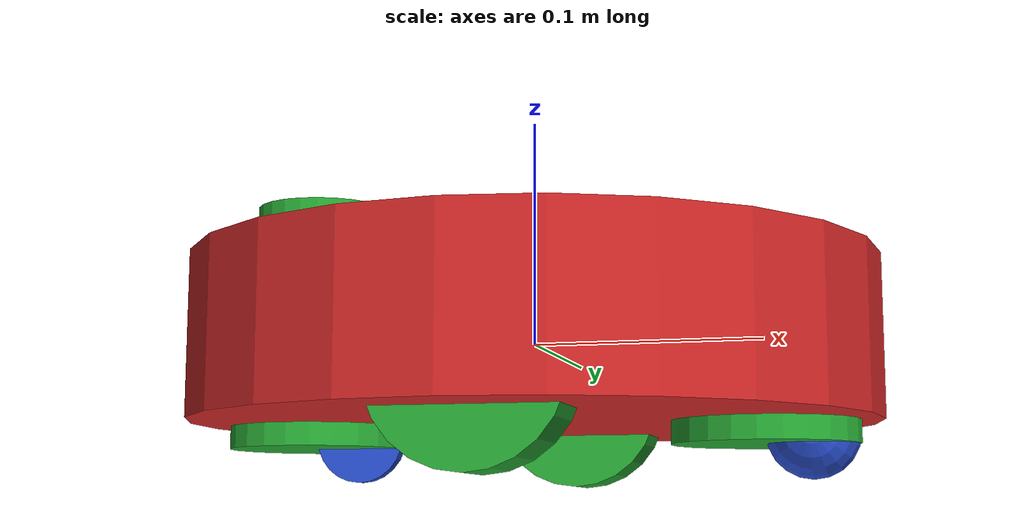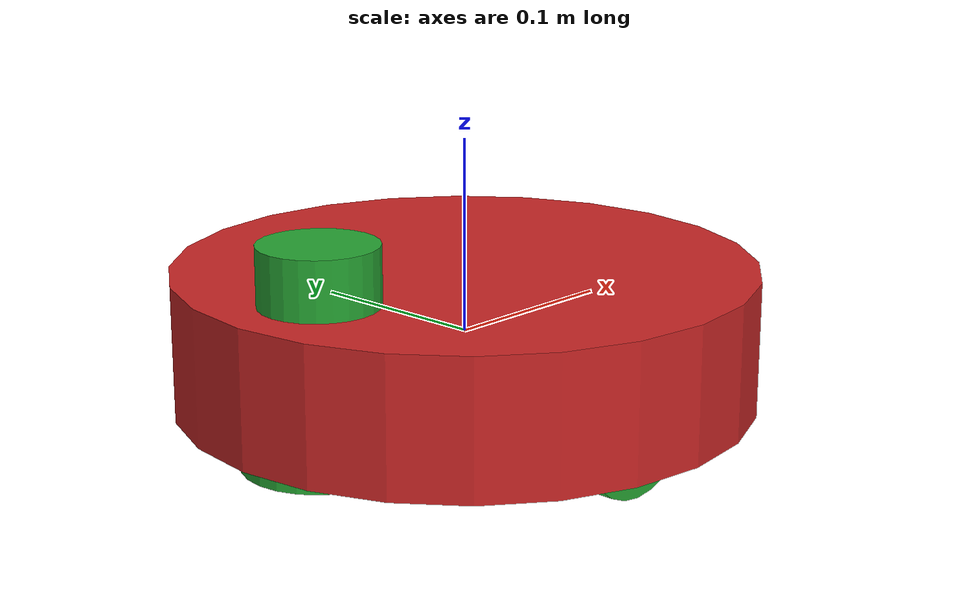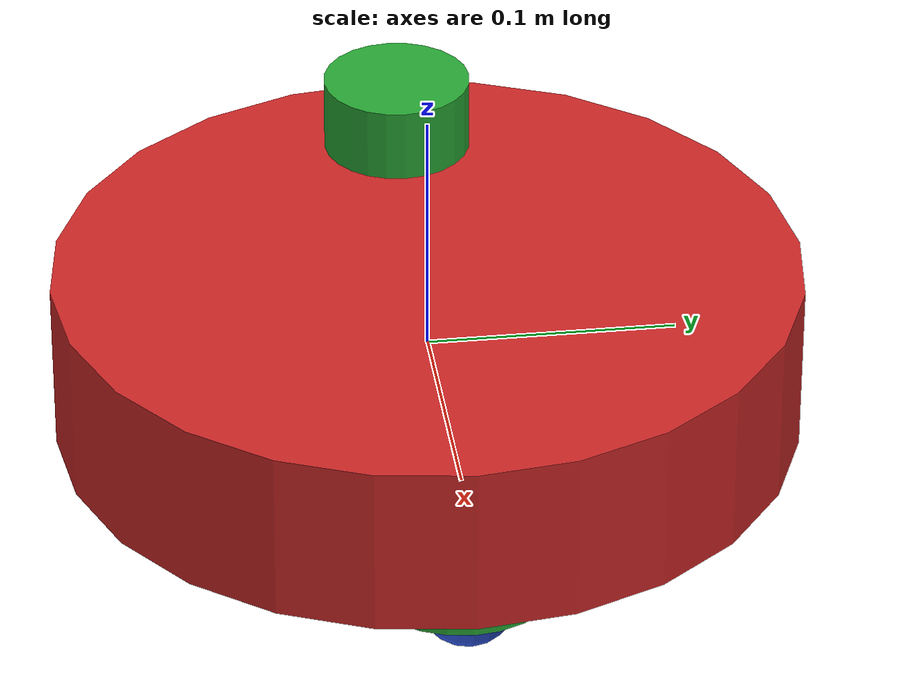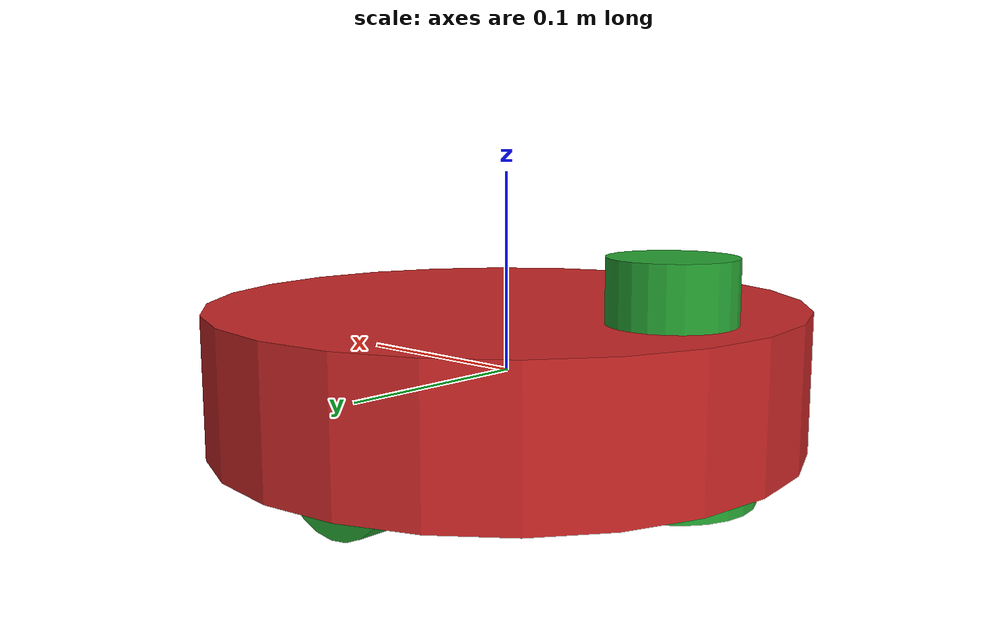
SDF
<sdf version='1.7'>
  <model name='differential'>
    <link name='body_link'>
      <inertial>
        <pose>-0.001961 0 0.00098 0 -0 0</pose>
        <mass>5.1</mass>
        <inertia>
          <ixx>0.101245</ixx>
          <ixy>0</ixy>
          <ixz>0.000490196</ixz>
          <iyy>0.102225</iyy>
          <iyz>0</iyz>
          <izz>0.10198</izz>
        </inertia>
      </inertial>
      <collision name='body_link_fixed_joint_lump__body_collision_collision'>
        <pose>0 0 0 0 -0 0</pose>
        <geometry>
          <cylinder>
            <length>0.08</length>
            <radius>0.16</radius>
          </cylinder>
        </geometry>
      </collision>
      <collision name='body_link_fixed_joint_lump__lidar_link_collision_1'>
        <pose>-0.1 0 0.05 0 -0 0</pose>
        <geometry>
          <cylinder>
            <length>0.03</length>
            <radius>0.03</radius>
          </cylinder>
        </geometry>
        <surface>
          <contact>
            <ode/>
          </contact>
          <friction>
            <ode/>
          </friction>
        </surface>
      </collision>
      <visual name='body_link_visual'>
        <pose>0 0 0 0 -0 0</pose>
        <geometry>
          <cylinder>
            <length>0.07</length>
            <radius>0.15</radius>
          </cylinder>
        </geometry>
        <material>
          <script>
            <name>Gazebo/Red</name>
            <uri>file://media/materials/scripts/gazebo.material</uri>
          </script>
        </material>
      </visual>
      <visual name='body_link_fixed_joint_lump__lidar_link_visual_1'>
        <pose>-0.1 0 0.05 0 -0 0</pose>
        <geometry>
          <cylinder>
            <length>0.03</length>
            <radius>0.03</radius>
          </cylinder>
        </geometry>
        <material>
          <script>
            <name>Gazebo/Green</name>
            <uri>file://media/materials/scripts/gazebo.material</uri>
          </script>
        </material>
      </visual>
      <self_collide>0</self_collide>
      <sensor name='base_contact_sensor' type='contact'>
        <always_on>1</always_on>
        <update_rate>100</update_rate>
        <contact>
          <collision>body_link_fixed_joint_lump__body_collision_collision</collision>
          <topic>__default_topic__</topic>
        </contact>
        <plugin name='base_gazebo_ros_bumper_controller' filename='libgazebo_ros_bumper.so'>
          <alwaysOn>1</alwaysOn>
          <updateRate>100.0</updateRate>
        </plugin>
      </sensor>
      <sensor name='lidar_sensor' type='ray'>
        <visualize>1</visualize>
        <update_rate>40</update_rate>
        <ray>
          <scan>
            <horizontal>
              <samples>180</samples>
              <resolution>1</resolution>
              <min_angle>-1.5708</min_angle>
              <max_angle>1.5708</max_angle>
            </horizontal>
            <vertical>
              <samples>16</samples>
              <resolution>1</resolution>
              <min_angle>-0.2618</min_angle>
              <max_angle>0.2618</max_angle>
            </vertical>
          </scan>
          <range>
            <min>0.14</min>
            <max>10</max>
            <resolution>0.01</resolution>
          </range>
        </ray>
        <plugin name='gazebo_ros_lidar_controller' filename='libgazebo_ros_ray_sensor.so'>
          <ros/>
          <frame_name>lidar_link</frame_name>
        </plugin>
        <pose>-0.1 0 0.05 0 -0 -3.14159</pose>
      </sensor>
    </link>
    <joint name='freeF_joint' type='revolute'>
      <pose relative_to='body_link'>-0.1 0 -0.04 0 -0 0</pose>
      <parent>body_link</parent>
      <child>flangeF_link</child>
      <axis>
        <xyz>0 0 1</xyz>
        <limit>
          <lower>-1e+16</lower>
          <upper>1e+16</upper>
        </limit>
        <dynamics>
          <spring_reference>0</spring_reference>
          <spring_stiffness>0</spring_stiffness>
        </dynamics>
      </axis>
    </joint>
    <link name='flangeF_link'>
      <pose relative_to='freeF_joint'>0 0 0 0 -0 0</pose>
      <inertial>
        <pose>0 0 0 0 -0 0</pose>
        <mass>0.05</mass>
        <inertia>
          <ixx>0.001</ixx>
          <ixy>0</ixy>
          <ixz>0</ixz>
          <iyy>0.001</iyy>
          <iyz>0</iyz>
          <izz>0.001</izz>
        </inertia>
      </inertial>
      <collision name='flangeF_link_collision'>
        <pose>0 0 0 0 -0 0</pose>
        <geometry>
          <cylinder>
            <length>0.01</length>
            <radius>0.04</radius>
          </cylinder>
        </geometry>
        <surface>
          <contact>
            <ode/>
          </contact>
          <friction>
            <ode/>
          </friction>
        </surface>
      </collision>
      <visual name='flangeF_link_visual'>
        <pose>0 0 0 0 -0 0</pose>
        <geometry>
          <cylinder>
            <length>0.01</length>
            <radius>0.04</radius>
          </cylinder>
        </geometry>
        <material>
          <script>
            <name>Gazebo/Green</name>
            <uri>file://media/materials/scripts/gazebo.material</uri>
          </script>
        </material>
      </visual>
    </link>
    <joint name='casterF_joint' type='revolute'>
      <pose relative_to='flangeF_link'>0.02 0 0 0 -0 0</pose>
      <parent>flangeF_link</parent>
      <child>casterF_link</child>
      <axis>
        <xyz>0 1 0</xyz>
        <limit>
          <lower>-1e+16</lower>
          <upper>1e+16</upper>
        </limit>
        <dynamics>
          <spring_reference>0</spring_reference>
          <spring_stiffness>0</spring_stiffness>
        </dynamics>
      </axis>
    </joint>
    <link name='casterF_link'>
      <pose relative_to='casterF_joint'>0 0 0 0 -0 0</pose>
      <inertial>
        <pose>0 0 0 0 -0 0</pose>
        <mass>0.01</mass>
        <inertia>
          <ixx>0.001</ixx>
          <ixy>0</ixy>
          <ixz>0</ixz>
          <iyy>0.001</iyy>
          <iyz>0</iyz>
          <izz>0.001</izz>
        </inertia>
      </inertial>
      <collision name='casterF_link_collision'>
        <pose>0 0 0 1.5708 -0 0</pose>
        <geometry>
          <cylinder>
            <length>0.006</length>
            <radius>0.02</radius>
          </cylinder>
        </geometry>
        <surface>
          <contact>
            <ode/>
          </contact>
          <friction>
            <ode/>
          </friction>
        </surface>
      </collision>
      <visual name='casterF_link_visual'>
        <pose>0 0 0 1.5708 -0 0</pose>
        <geometry>
          <cylinder>
            <length>0.006</length>
            <radius>0.02</radius>
          </cylinder>
        </geometry>
        <material>
          <script>
            <name>Gazebo/Blue</name>
            <uri>file://media/materials/scripts/gazebo.material</uri>
          </script>
        </material>
      </visual>
    </link>
    <joint name='freeR_joint' type='revolute'>
      <pose relative_to='body_link'>0.1 0 -0.04 0 -0 0</pose>
      <parent>body_link</parent>
      <child>flangeR_link</child>
      <axis>
        <xyz>0 0 1</xyz>
        <limit>
          <lower>-1e+16</lower>
          <upper>1e+16</upper>
        </limit>
        <dynamics>
          <spring_reference>0</spring_reference>
          <spring_stiffness>0</spring_stiffness>
        </dynamics>
      </axis>
    </joint>
    <link name='flangeR_link'>
      <pose relative_to='freeR_joint'>0 0 0 0 -0 0</pose>
      <inertial>
        <pose>0 0 0 0 -0 0</pose>
        <mass>0.05</mass>
        <inertia>
          <ixx>0.001</ixx>
          <ixy>0</ixy>
          <ixz>0</ixz>
          <iyy>0.001</iyy>
          <iyz>0</iyz>
          <izz>0.001</izz>
        </inertia>
      </inertial>
      <collision name='flangeR_link_collision'>
        <pose>0 0 0 0 -0 0</pose>
        <geometry>
          <cylinder>
            <length>0.01</length>
            <radius>0.04</radius>
          </cylinder>
        </geometry>
        <surface>
          <contact>
            <ode/>
          </contact>
          <friction>
            <ode/>
          </friction>
        </surface>
      </collision>
      <visual name='flangeR_link_visual'>
        <pose>0 0 0 0 -0 0</pose>
        <geometry>
          <cylinder>
            <length>0.01</length>
            <radius>0.04</radius>
          </cylinder>
        </geometry>
        <material>
          <script>
            <name>Gazebo/Green</name>
            <uri>file://media/materials/scripts/gazebo.material</uri>
          </script>
        </material>
      </visual>
    </link>
    <joint name='casterR_joint' type='revolute'>
      <pose relative_to='flangeR_link'>0.02 0 0 0 -0 0</pose>
      <parent>flangeR_link</parent>
      <child>casterR_link</child>
      <axis>
        <xyz>0 1 0</xyz>
        <limit>
          <lower>-1e+16</lower>
          <upper>1e+16</upper>
        </limit>
        <dynamics>
          <spring_reference>0</spring_reference>
          <spring_stiffness>0</spring_stiffness>
        </dynamics>
      </axis>
    </joint>
    <link name='casterR_link'>
      <pose relative_to='casterR_joint'>0 0 0 0 -0 0</pose>
      <inertial>
        <pose>0 0 0 0 -0 0</pose>
        <mass>0.01</mass>
        <inertia>
          <ixx>0.001</ixx>
          <ixy>0</ixy>
          <ixz>0</ixz>
          <iyy>0.001</iyy>
          <iyz>0</iyz>
          <izz>0.001</izz>
        </inertia>
      </inertial>
      <collision name='casterR_link_collision'>
        <pose>0 0 0 1.5708 -0 0</pose>
        <geometry>
          <sphere>
            <radius>0.02</radius>
          </sphere>
        </geometry>
        <surface>
          <contact>
            <ode/>
          </contact>
          <friction>
            <ode/>
          </friction>
        </surface>
      </collision>
      <visual name='casterR_link_visual'>
        <pose>0 0 0 1.5708 -0 0</pose>
        <geometry>
          <sphere>
            <radius>0.02</radius>
          </sphere>
        </geometry>
        <material>
          <script>
            <name>Gazebo/Blue</name>
            <uri>file://media/materials/scripts/gazebo.material</uri>
          </script>
        </material>
      </visual>
    </link>
    <joint name='wheelL_joint' type='revolute'>
      <pose relative_to='body_link'>0 -0.1 -0.02 1.5708 -0 0</pose>
      <parent>body_link</parent>
      <child>wheelL_link</child>
      <axis>
        <xyz>0 0 1</xyz>
        <limit>
          <lower>-1e+16</lower>
          <upper>1e+16</upper>
        </limit>
        <dynamics>
          <spring_reference>0</spring_reference>
          <spring_stiffness>0</spring_stiffness>
        </dynamics>
      </axis>
    </joint>
    <link name='wheelL_link'>
      <pose relative_to='wheelL_joint'>0 0 0 0 -0 0</pose>
      <inertial>
        <pose>0 0 0 0 -0 0</pose>
        <mass>0.1</mass>
        <inertia>
          <ixx>0.01</ixx>
          <ixy>0</ixy>
          <ixz>0</ixz>
          <iyy>0.01</iyy>
          <iyz>0</iyz>
          <izz>0.01</izz>
        </inertia>
      </inertial>
      <collision name='wheelL_link_collision'>
        <pose>0 0 0 0 -0 0</pose>
        <geometry>
          <cylinder>
            <length>0.03</length>
            <radius>0.04</radius>
          </cylinder>
        </geometry>
        <surface>
          <contact>
            <ode/>
          </contact>
          <friction>
            <ode/>
          </friction>
        </surface>
      </collision>
      <visual name='wheelL_link_visual'>
        <pose>0 0 0 0 -0 0</pose>
        <geometry>
          <cylinder>
            <length>0.03</length>
            <radius>0.04</radius>
          </cylinder>
        </geometry>
        <material>
          <script>
            <name>Gazebo/Green</name>
            <uri>file://media/materials/scripts/gazebo.material</uri>
          </script>
        </material>
      </visual>
    </link>
    <joint name='wheelR_joint' type='revolute'>
      <pose relative_to='body_link'>0 0.1 -0.02 1.5708 -0 0</pose>
      <parent>body_link</parent>
      <child>wheelR_link</child>
      <axis>
        <xyz>0 0 1</xyz>
        <limit>
          <lower>-1e+16</lower>
          <upper>1e+16</upper>
        </limit>
        <dynamics>
          <spring_reference>0</spring_reference>
          <spring_stiffness>0</spring_stiffness>
        </dynamics>
      </axis>
    </joint>
    <link name='wheelR_link'>
      <pose relative_to='wheelR_joint'>0 0 0 0 -0 0</pose>
      <inertial>
        <pose>0 0 0 0 -0 0</pose>
        <mass>0.1</mass>
        <inertia>
          <ixx>0.01</ixx>
          <ixy>0</ixy>
          <ixz>0</ixz>
          <iyy>0.01</iyy>
          <iyz>0</iyz>
          <izz>0.01</izz>
        </inertia>
      </inertial>
      <collision name='wheelR_link_collision'>
        <pose>0 0 0 0 -0 0</pose>
        <geometry>
          <cylinder>
            <length>0.03</length>
            <radius>0.04</radius>
          </cylinder>
        </geometry>
        <surface>
          <contact>
            <ode/>
          </contact>
          <friction>
            <ode/>
          </friction>
        </surface>
      </collision>
      <visual name='wheelR_link_visual'>
        <pose>0 0 0 0 -0 0</pose>
        <geometry>
          <cylinder>
            <length>0.03</length>
            <radius>0.04</radius>
          </cylinder>
        </geometry>
        <material>
          <script>
            <name>Gazebo/Green</name>
            <uri>file://media/materials/scripts/gazebo.material</uri>
          </script>
        </material>
      </visual>
    </link>
    <plugin name='gazebo_ros_p3d' filename='libgazebo_ros_p3d.so'>
      <alwaysOn>1</alwaysOn>
      <updateRate>50.0</updateRate>
      <body_name>body_link</body_name>
      <gaussianNoise>0.0</gaussianNoise>
    </plugin>
    <plugin name='gazebo_ros2_control' filename='libgazebo_ros2_control.so'>
      <parameters>$(find agent_description)/config/diff_drive_controller.yaml</parameters>
    </plugin>
    <frame name='lidar_joint' attached_to='body_link'>
      <pose>-0.1 0 0.05 0 -0 0</pose>
    </frame>
    <frame name='lidar_link' attached_to='lidar_joint'/>
  </model>
</sdf>
